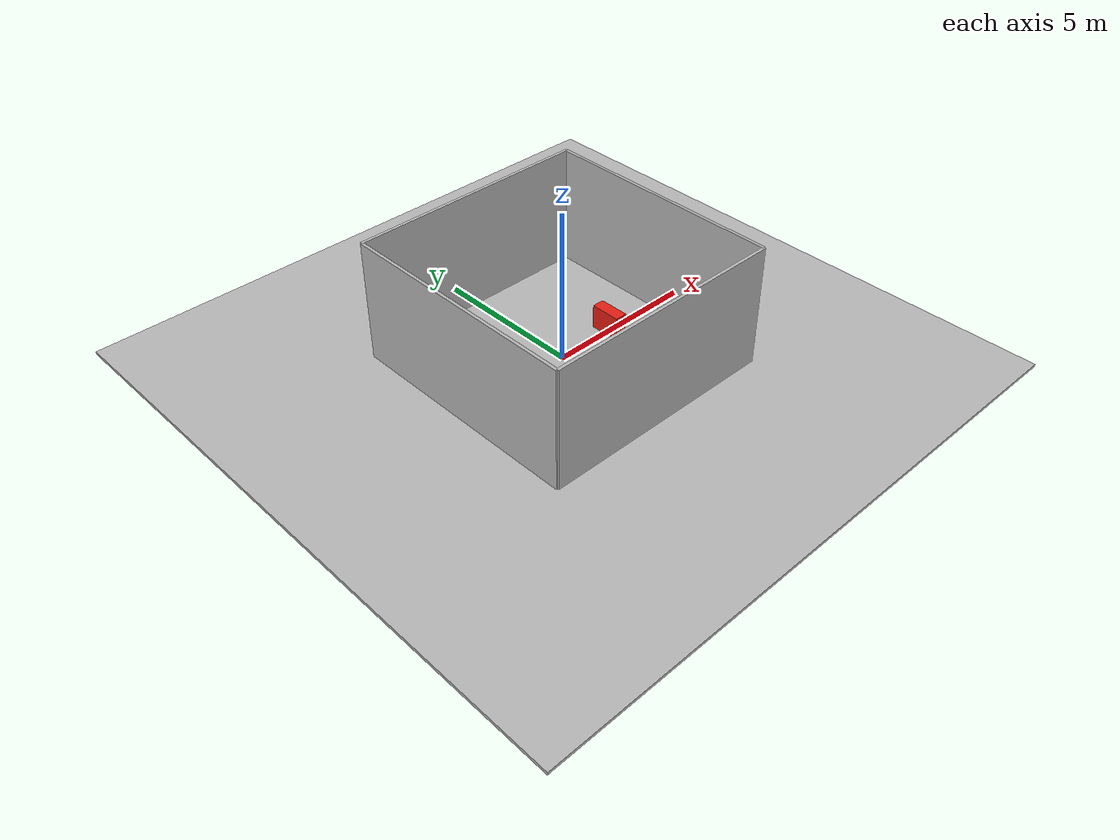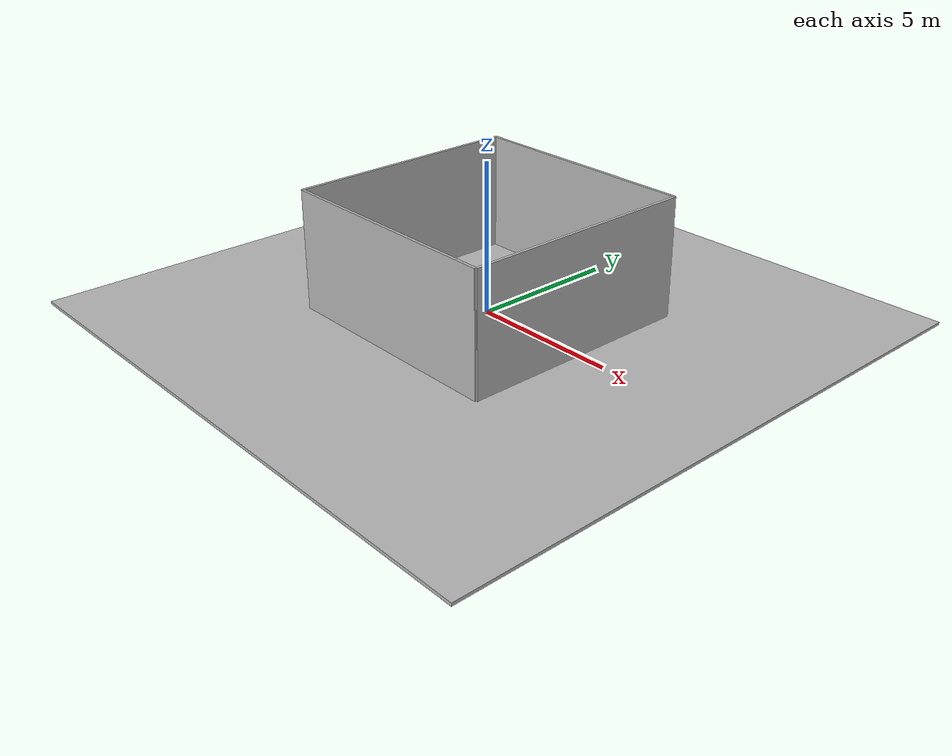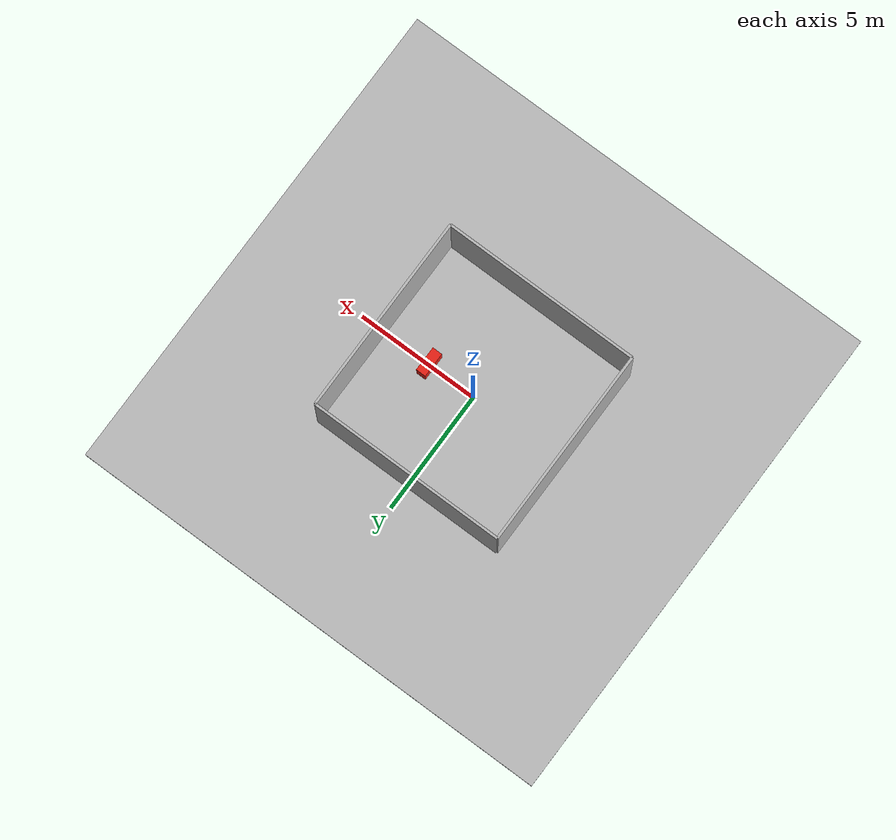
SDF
<?xml version="1.0" ?>
<sdf version="1.10">
  <world name="sensor_test">
    <gravity>0 0 -9.80665</gravity>
    <scene><ambient>0.35 0.35 0.35 1</ambient></scene>

    <plugin filename="gz-sim-physics-system" name="gz::sim::systems::Physics"/>
    <plugin filename="gz-sim-user-commands-system" name="gz::sim::systems::UserCommands"/>
    <plugin filename="gz-sim-scene-broadcaster-system" name="gz::sim::systems::SceneBroadcaster"/>
    <plugin filename="gz-sim-sensors-system" name="gz::sim::systems::Sensors">
      <render_engine>ogre2</render_engine>
    </plugin>
    <plugin filename="gz-sim-imu-system" name="gz::sim::systems::Imu"/>

    <light name="sun" type="directional">
      <pose>0 0 8 0 0 0</pose>
      <direction>-0.5 0.2 -1</direction>
      <diffuse>1 1 1 1</diffuse>
    </light>

    <model name="sensor_floor">
      <static>true</static>
      <pose>0 0 -0.05 0 0 0</pose>
      <link name="link">
        <collision name="collision">
          <geometry><box><size>20 20 0.1</size></box></geometry>
        </collision>
        <visual name="visual">
          <geometry><box><size>20 20 0.1</size></box></geometry>
        </visual>
      </link>
    </model>

    <model name="sensor_enclosure">
      <static>true</static>
      <link name="link">
        <collision name="west"><pose>-4 0 2 0 0 0</pose><geometry><box><size>0.1 8 4</size></box></geometry></collision>
        <collision name="east"><pose>4 0 2 0 0 0</pose><geometry><box><size>0.1 8 4</size></box></geometry></collision>
        <collision name="south"><pose>0 -4 2 0 0 0</pose><geometry><box><size>8 0.1 4</size></box></geometry></collision>
        <collision name="north"><pose>0 4 2 0 0 0</pose><geometry><box><size>8 0.1 4</size></box></geometry></collision>
        <visual name="west"><pose>-4 0 2 0 0 0</pose><geometry><box><size>0.1 8 4</size></box></geometry></visual>
        <visual name="east"><pose>4 0 2 0 0 0</pose><geometry><box><size>0.1 8 4</size></box></geometry></visual>
        <visual name="south"><pose>0 -4 2 0 0 0</pose><geometry><box><size>8 0.1 4</size></box></geometry></visual>
        <visual name="north"><pose>0 4 2 0 0 0</pose><geometry><box><size>8 0.1 4</size></box></geometry></visual>
      </link>
    </model>

    <!-- Camera, depth, 2D/3D LiDAR에서 함께 식별할 수 있는 표적이다. -->
    <model name="sensor_target">
      <static>true</static>
      <pose>2 0 0.4 0 0 0</pose>
      <link name="link">
        <collision name="collision">
          <geometry><box><size>0.4 1.0 0.8</size></box></geometry>
        </collision>
        <visual name="visual">
          <geometry><box><size>0.4 1.0 0.8</size></box></geometry>
          <material>
            <ambient>0.75 0.08 0.05 1</ambient>
            <diffuse>0.9 0.12 0.08 1</diffuse>
          </material>
        </visual>
      </link>
    </model>
  </world>
</sdf>
